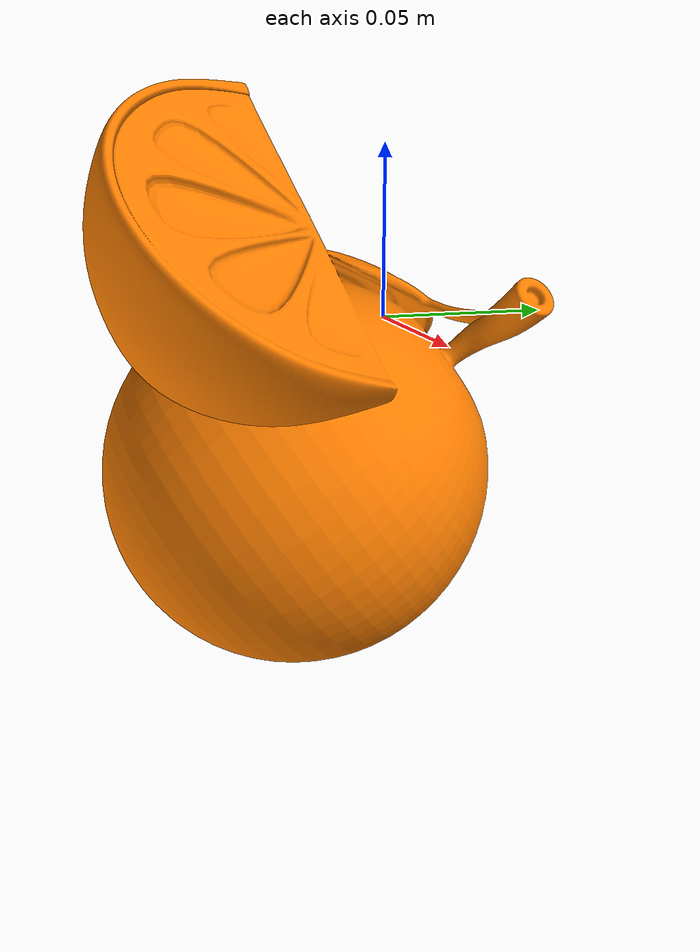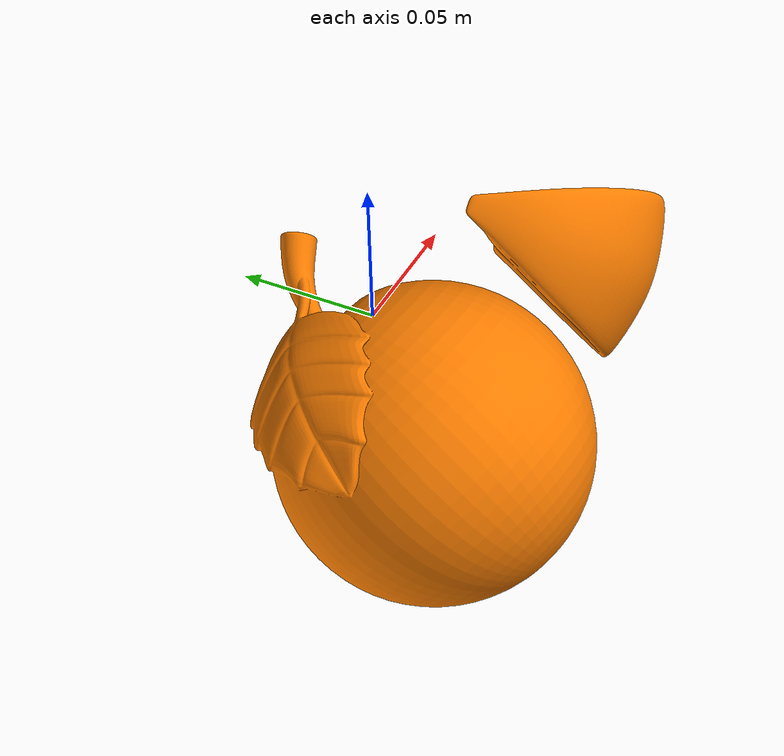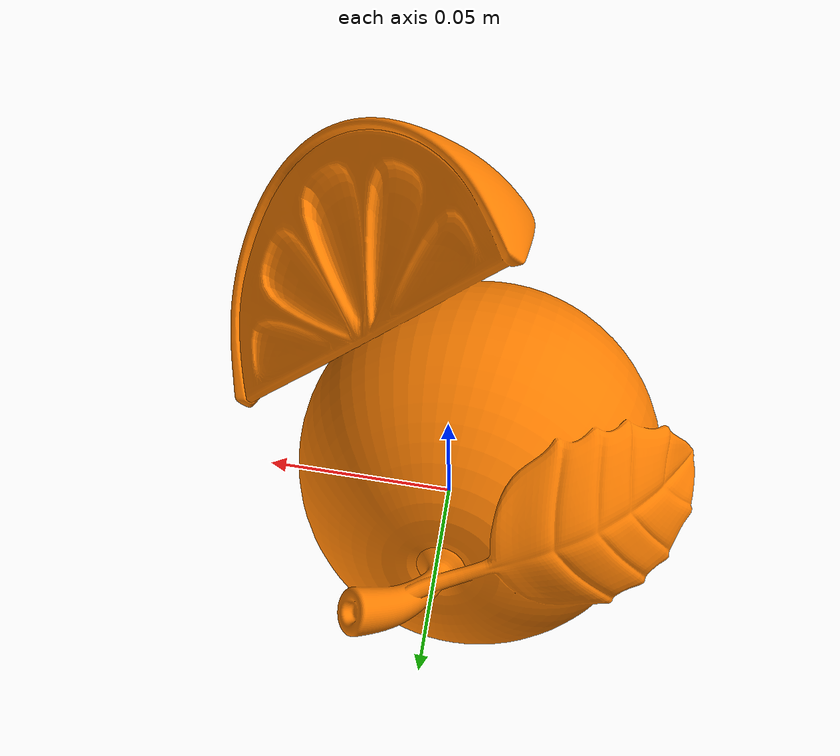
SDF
<?xml version="1.0"?>
<sdf version="1.6">
  <model name="orange">
    <static>false</static>
    <link name="link">
      <inertial>
        <mass>0.2</mass>
        <inertia>
          <ixx>0.001</ixx>
          <iyy>0.001</iyy>
          <izz>0.001</izz>
        </inertia>
      </inertial>
      <visual name="visual">
        <geometry>
          <mesh>
            <uri>model://fruits/orange/Orange.obj</uri>
            <scale>0.1 0.1 0.1</scale>
          </mesh>
        </geometry>
        <material>
          <ambient>1 0.5 0 1</ambient>
          <diffuse>1 0.5 0 1</diffuse>
        </material>
      </visual>
      <collision name="collision">
        <geometry>
          <mesh>
            <uri>model://fruits/orange/Orange.obj</uri>
            <scale>0.1 0.1 0.1</scale>
          </mesh>
        </geometry>
      </collision>
    </link>
  </model>
</sdf>
